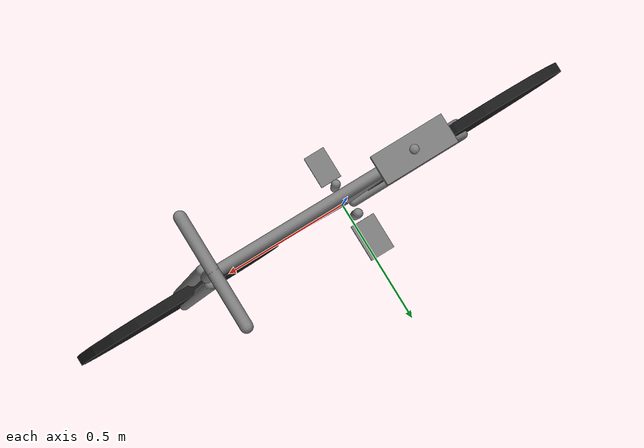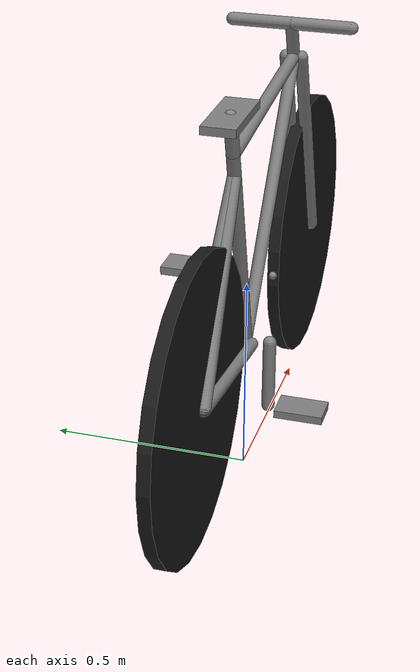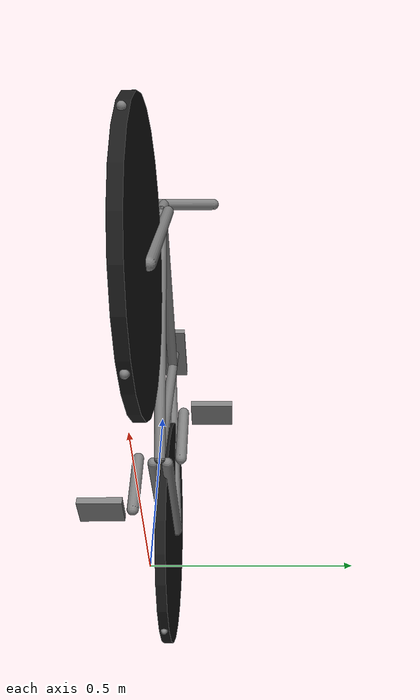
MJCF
<mujoco model="bicycle">

        <asset/>

            <default>
                <joint limited="true" damping="0.01"/>
            </default>

        <worldbody>
            <body name="bicycle" pos="0 0 0.35">
                <freejoint name="bicycle_free"/>
                <body name="frame" pos="0 0 0">
                    <site name="k_bottom_bracket" type="sphere" size="0.01" pos="0.0 0.0 0.0"/>
                    <site name="k_seat_stay" type="sphere" size="0.01" pos="-0.12811542732574777 0.0 0.4781332840130889"/>
                    <site name="k_lower_head_tube" type="sphere" size="0.01" pos="0.425253080816971 0.0 0.5850627629637268"/>
                    <site name="k_rear_hub_left" type="sphere" size="0.01" pos="-0.43 -0.02 0.05"/>
                    <site name="k_rear_hub_right" type="sphere" size="0.01" pos="-0.43 0.02 0.05"/>
                    <site name="k_rear_wheel_ground" type="sphere" size="0.01" pos="-0.43 0.0 -0.3056"/>
                    <geom name="seat tube" type="capsule" fromto="0.0 0.0 0.0  -0.1423504748063864 0.0 0.5312592044589877" size="0.016"/>
                    <geom name="seat post" type="capsule" fromto="-0.1423504748063864 0.0 0.5312592044589877  -0.16823237931663848 0.0 0.6278517870878945" size="0.016"/>
                    <body name="seat" pos="-0.16823237931663848 0.0 0.6278517870878945">
                        <geom name="seat" type="box" size="0.1 0.04 0.01"/>
                        <site name="seat_site" type="sphere" size="0.01" pos="0 0 0"/>
                        <site name="k_saddle" type="sphere" size="0.01" pos="0 0 0"/>
                    </body>
                    <geom name="down tube" type="capsule" fromto="0.0 0.0 0.0  0.425253080816971 0.0 0.5850627629637268" size="0.016"/>
                    <geom name="top tube" type="capsule" fromto="0.425253080816971 0.0 0.5850627629637268  -0.1423504748063864 0.0 0.5312592044589877" size="0.016"/>
                    <geom name="chain stay left" type="capsule" fromto="-0.02 -0.02 0.0  -0.43 -0.02 0.05" size="0.016"/>
                    <geom name="chain stay right" type="capsule" fromto="-0.02 0.02 0.0  -0.43 0.02 0.05" size="0.016"/>
                    <geom name="seat stay left" type="capsule" fromto="-0.43 -0.02 0.05  -0.12811542732574777 0.0 0.4781332840130889" size="0.016"/>
                    <geom name="seat stay right" type="capsule" fromto="-0.43 0.02 0.05  -0.12811542732574777 0.0 0.4781332840130889" size="0.016"/>
                    <body name="rear wheel" pos="-0.43 0.0 0.05" euler="90 0 0">
                        <joint name="rear wheel hinge" type="hinge" axis="0 0 -1" pos="0 0 0" limited="false"/>
                        <geom name="rear wheel contact" type="cylinder" size="0.35559999999999997 0.015" rgba="0.1 0.1 0.1 1" contype="2" conaffinity="2" friction="1.0 0.005 0.0001"/>
                    </body>
                </body>
                <body name="front fork" pos="0.6200000000000001 0.0 0.05" euler="0 -20.0 0">
                    <joint name="steer" type="hinge" axis="0 0 1" pos="0 0 0" range="-35 35"/>
                    <site name="k_front_hub_left" type="sphere" size="0.01" pos="0 -0.02 0"/>
                    <site name="k_front_hub_right" type="sphere" size="0.01" pos="0 0.02 0"/>
                    <site name="k_front_wheel_back" type="sphere" size="0.01" pos="-0.334154695951469 0 0.12162236296660779"/>
                    <site name="k_front_wheel_front" type="sphere" size="0.01" pos="0.334154695951469 0 -0.12162236296660779"/>
                    <site name="k_front_wheel_ground" type="sphere" size="0.01" pos="-0.12162236296660779 0 -0.334154695951469"/>
                    <site name="k_upper_head_tube" type="sphere" size="0.01" pos="0 0 0.6694018992255457"/>
                    <site name="k_handlebar_left" type="sphere" size="0.01" pos="0 -0.15 0.6694018992255457"/>
                    <site name="k_handlebar_middle" type="sphere" size="0.01" pos="0 0 0.6694018992255457"/>
                    <site name="k_handlebar_right" type="sphere" size="0.01" pos="0 0.15 0.6694018992255457"/>
                    <geom name="head tube" type="capsule" fromto="0 0 0.5694018992255457 0 0 0.6694018992255457" size="0.016"/>
                    <geom name="handlebar" type="capsule" fromto="0 -0.15 0.6694018992255457 0 0.15 0.6694018992255457" size="0.016"/>
                    <geom name="fork left" type="capsule" fromto="0 -0.02 0 0 -0.02 0.5694018992255457" size="0.016"/>
                    <geom name="fork right" type="capsule" fromto="0 0.02 0 0 0.02 0.5694018992255457" size="0.016"/>
                    <body name="front wheel" pos="0 0 0" euler="90 0 0">
                        <joint name="front wheel hinge" type="hinge" axis="0 0 -1" pos="0 0 0" limited="false"/>
                        <geom name="front wheel contact" type="cylinder" size="0.35559999999999997 0.015" rgba="0.1 0.1 0.1 1" contype="2" conaffinity="2" friction="1.0 0.005 0.0001"/>
                    </body>
                </body>
                <body name="pedals" pos="0 0 0">
                    <joint name="pedals" type="hinge" axis="0 1 0" pos="0 0 0" limited="false"/>
                    <geom name="left_crank" type="capsule" fromto="0 -0.06 0 0 -0.06 -0.175" size="0.016"/>
                    <geom name="right_crank" type="capsule" fromto="0 0.06 0 0 0.06 0.175" size="0.016"/>
                    <body name="left_pedal" pos="0 -0.14400000000000002 -0.175" euler="180 0 0">
                        <joint name="left_pedal_hinge" type="hinge" axis="0 1 0" pos="0 0 0" limited="false"/>
                        <geom name="left_pedal" type="box" size="0.04 0.06 0.01"/>
                        <site name="k_left_pedal" type="sphere" size="0.01" pos="0 0 0"/>
                    </body>
                    <body name="right_pedal" pos="0 0.14400000000000002 0.175">
                        <joint name="right_pedal_hinge" type="hinge" axis="0 1 0" pos="0 0 0" limited="false"/>
                        <geom name="right_pedal" type="box" size="0.04 0.06 0.01"/>
                        <site name="k_right_pedal" type="sphere" size="0.01" pos="0 0 0"/>
                    </body>
                </body>

            </body>
        </worldbody>

        <equality>
            <joint joint1="rear wheel hinge" joint2="pedals" polycoef="0 1.4 0 0 0"/>
        </equality>

        <equality>
            <joint joint1="left_pedal_hinge" joint2="pedals" polycoef="0 1 0 0 0"/>
            <joint joint1="right_pedal_hinge" joint2="pedals" polycoef="0 -1 0 0 0"/>
        </equality>

        <actuator>
            <motor name="pedal_drive" joint="pedals"/>
            <motor joint="steer"/>
        </actuator>

            <size njmax="100" nconmax="50"/>
        </mujoco>
